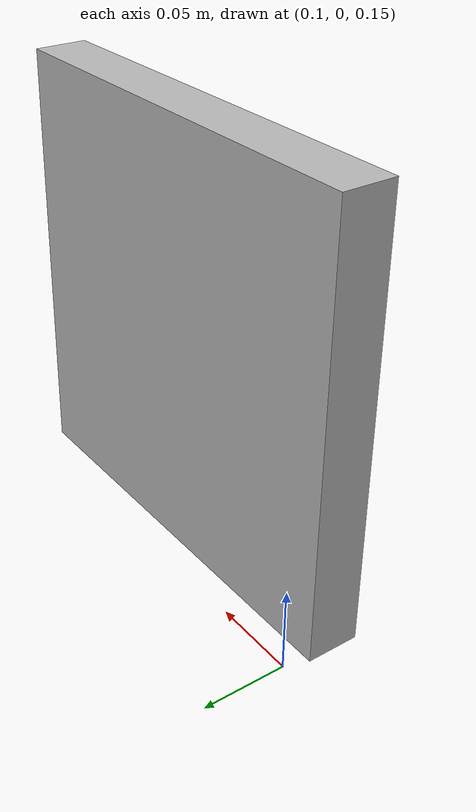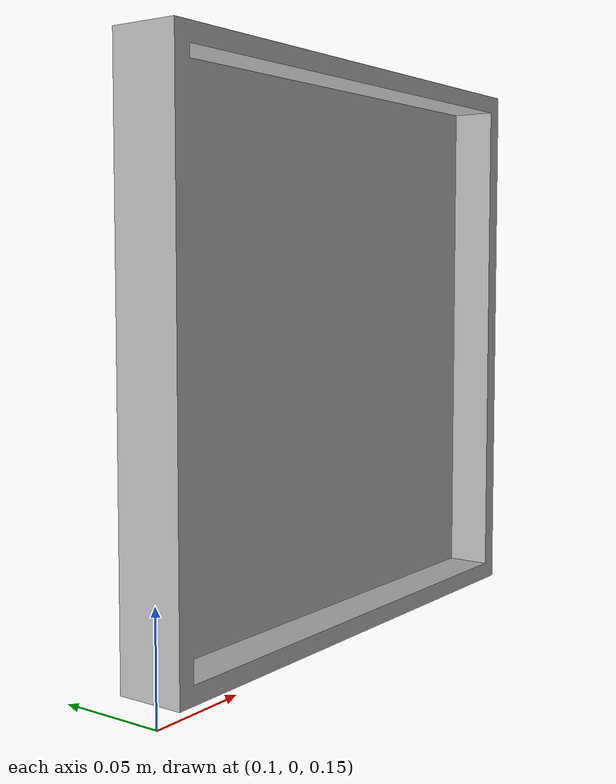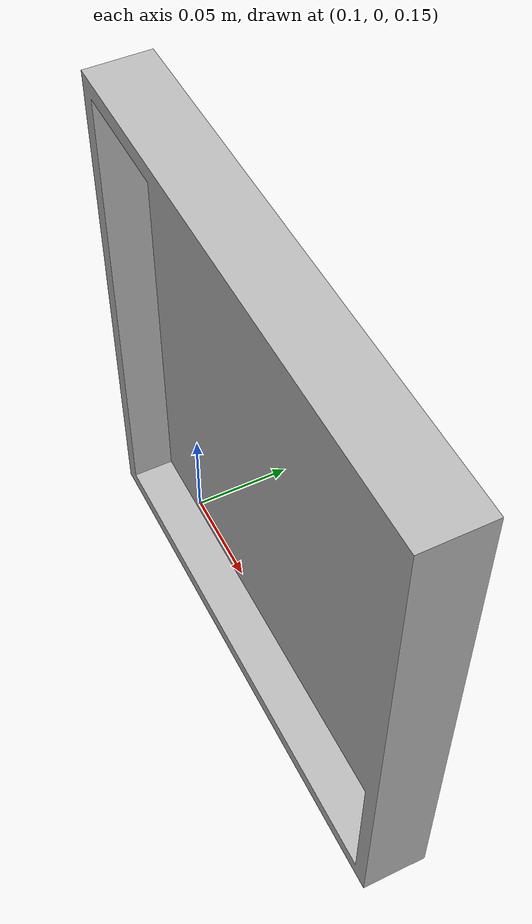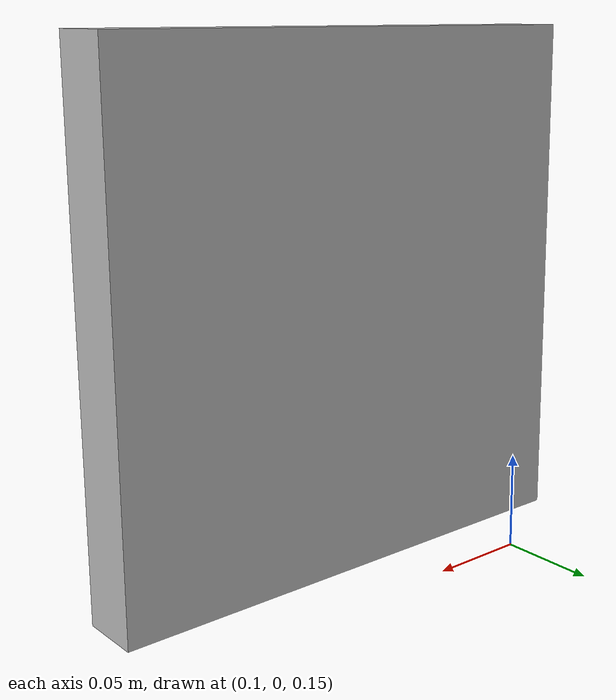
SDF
<?xml version="1.0" ?>
<sdf version="1.4">
    <model name="challenge_tray">
    <static>true</static>
    <link name="link">
        <pose>0 0 0 0 0 0</pose>
        <collision name="collision">
            <geometry>
                <mesh>
                    <uri>model://challenge_tray/mesh/challenge_tray.stl</uri>
                    <scale>0.001 0.001 0.001</scale>
                </mesh>
            </geometry>
        </collision>
        <visual name="visual">
            <geometry>
                <mesh>
                    <uri>model://challenge_tray/mesh/challenge_tray.stl</uri>
                    <scale>0.001 0.001 0.001</scale>
                </mesh>
            </geometry>
        </visual>
        </link>
    </model>
</sdf>
